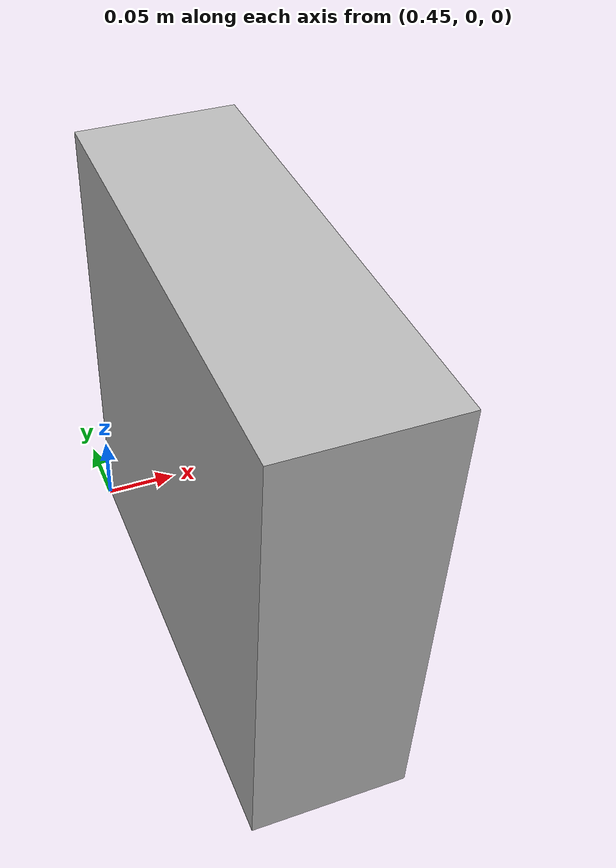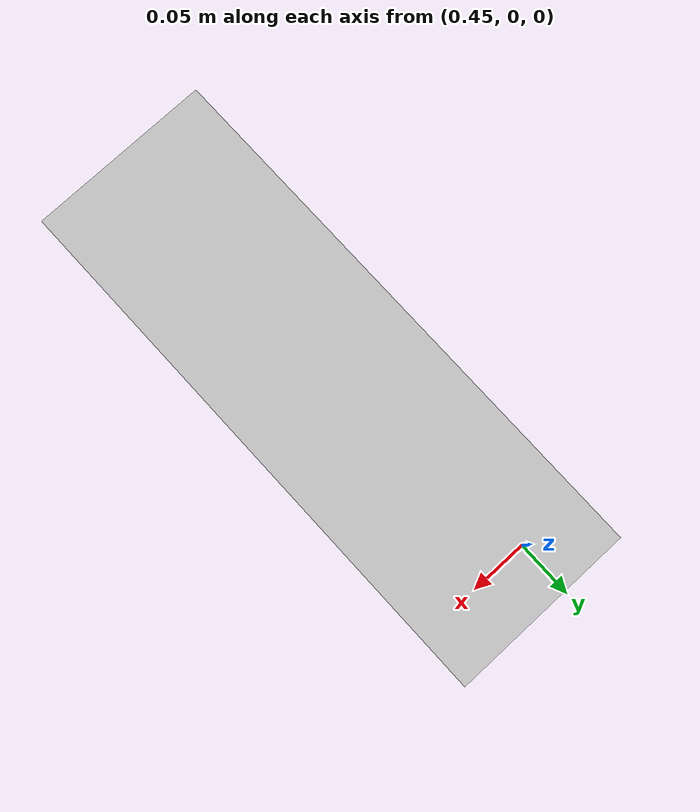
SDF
<?xml version="1.0"?>
<sdf version="1.4">
<model name="picture_frame">
  <static>true</static>
    <link name="link">
      <collision name="collision">
        <pose>0.3 -0.3 0 0 1.57 1.57</pose>
        <geometry>
          <box>
            <size>0.3 0.3 0.1</size>
          </box>
        </geometry>
        <surface>
          <friction>
            <ode>
              <mu>100</mu>
              <mu2>100</mu2>
            </ode>
          </friction>
        </surface>
      </collision>
      <visual name="visual">
        <cast_shadows>false</cast_shadows>
        <pose>0.5 -0.15 0.15 0 1.57 0 </pose>
        <geometry>
          <box>
            <size>0.3 0.3 0.1</size>
          </box>
        </geometry>
        <material>
          <script>
            <uri>file://materials/scripts</uri>
            <uri>file://materials/textures</uri>
            <name>picture_frame</name>
          </script>
        </material>
      </visual>
    </link>
  </model>
</sdf>
